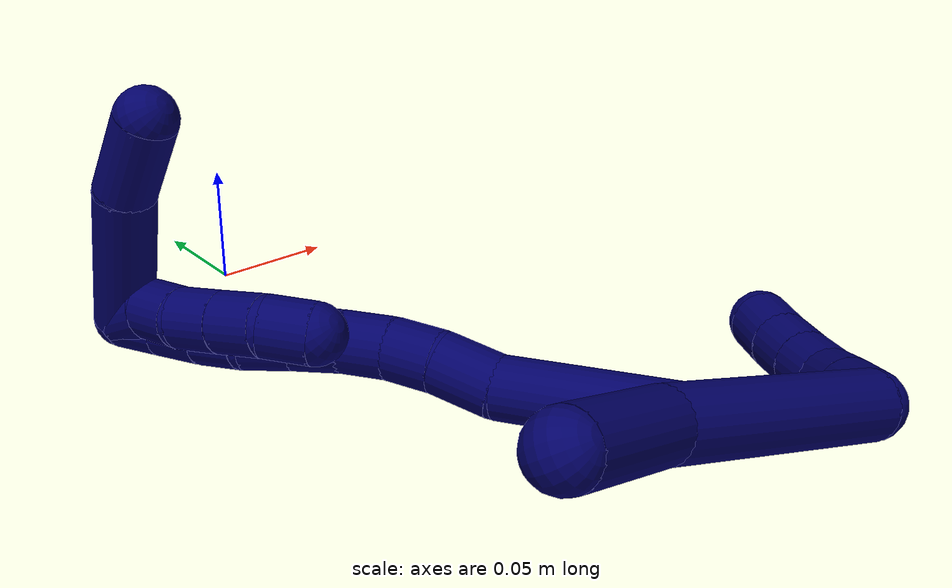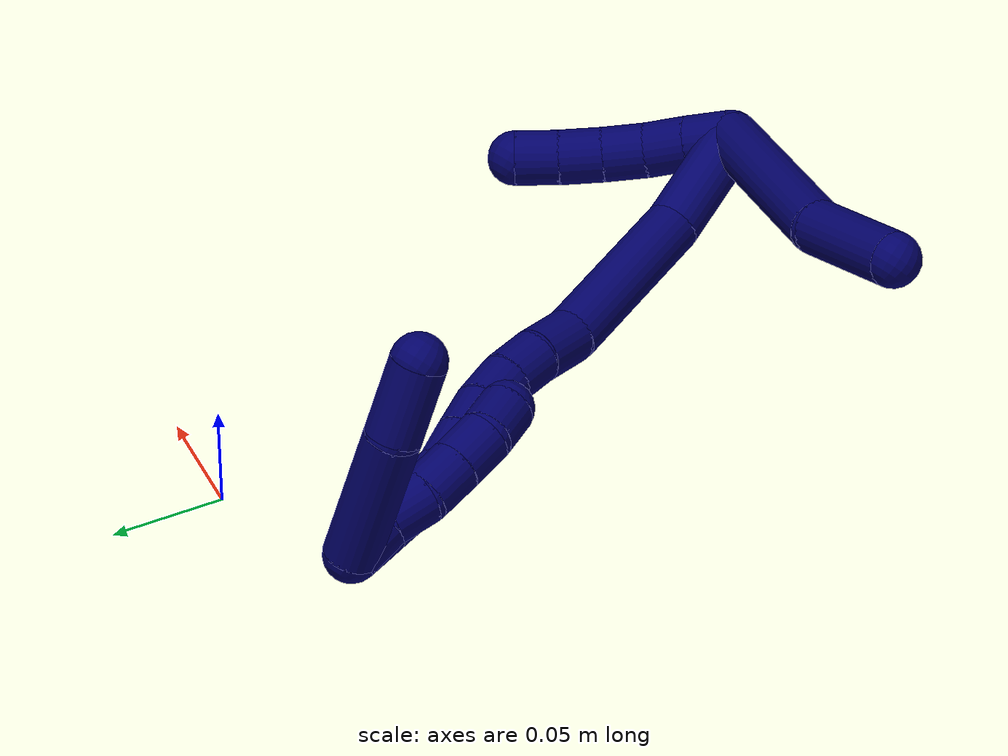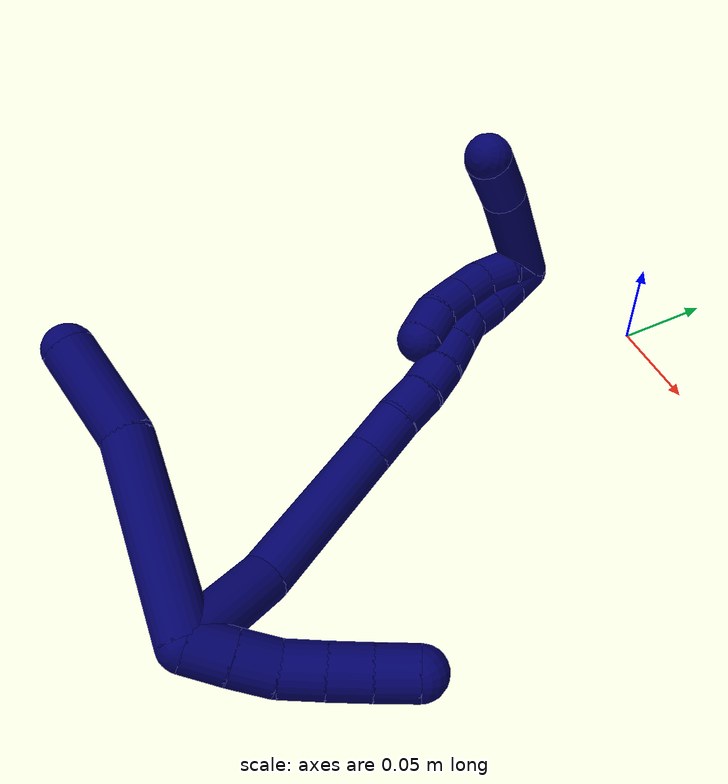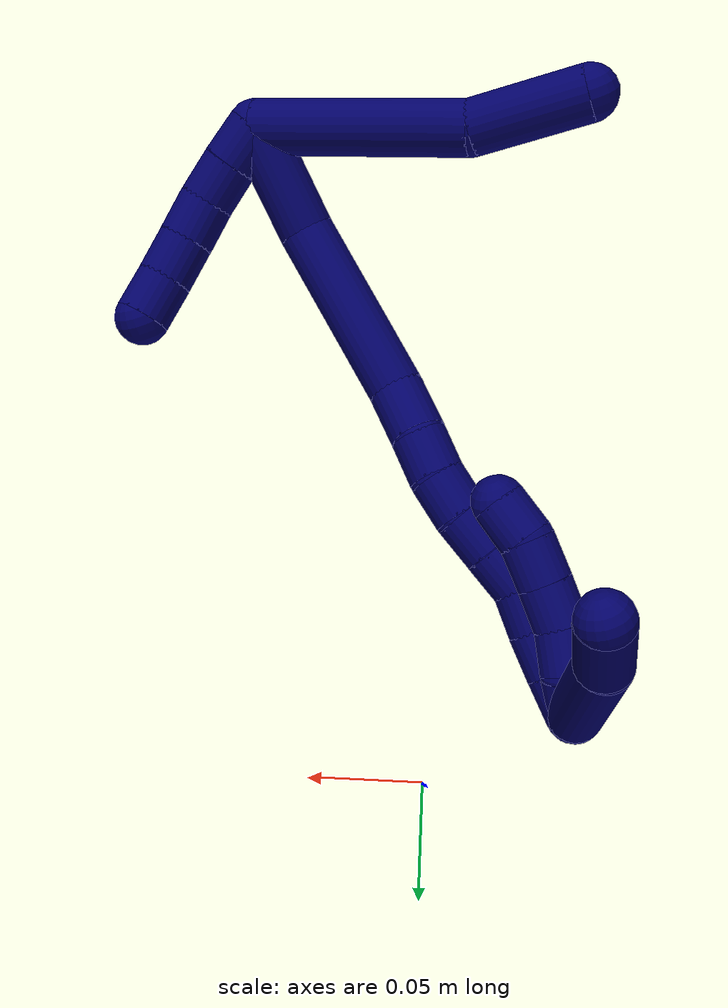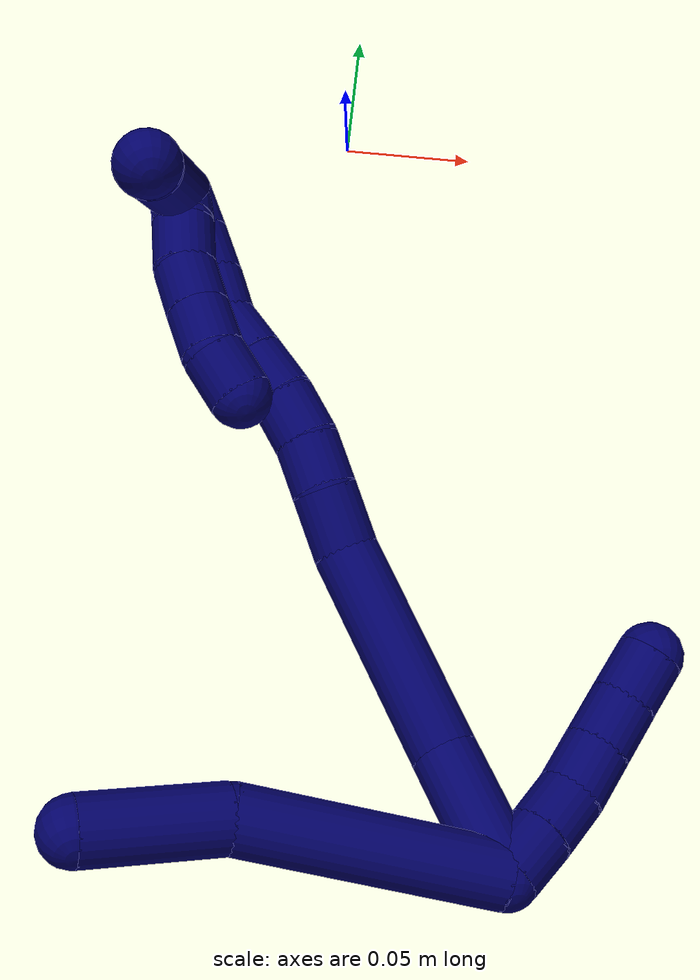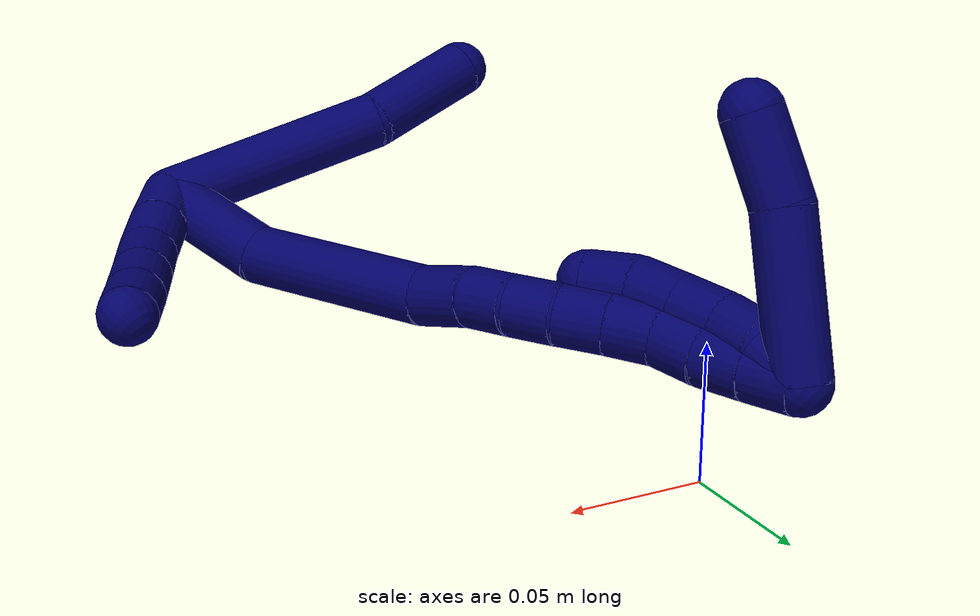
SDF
<sdf version="1.7">
 <world name="default">
  <model name="7">
   <static>0</static>
   <link name="7">
    <collision name="collision-cylinder-e_1_2_8">
     <pose>-0.047247 -0.005652 -0.011453 2.68315 -1.30678 -2.54994</pose>
     <geometry><cylinder><radius>0.0125</radius><length>0.097887</length></cylinder></geometry>
     <surface>
      <friction><ode><mu>1.16</mu><mu2>1.16</mu2><slip1>0</slip1><slip2>0</slip2></ode></friction>
      <contact><ode><kp>1e+06</kp><kd>1</kd><max_vel>0</max_vel><min_depth>0.001</min_depth></ode></contact>
     </surface>
    </collision>
    <visual name="visual-cylinder-e_1_2_8">
     <pose>-0.047247 -0.005652 -0.011453 2.68315 -1.30678 -2.54994</pose>
     <geometry><cylinder><radius>0.0125</radius><length>0.097887</length></cylinder></geometry>
     <material><ambient>0.003922 0 0.403922 1</ambient></material>
    </visual>
    <collision name="collision-cylinder-e_2_8_6">
     <pose>-0.119736 -0.017752 -0.022404 1.49296 -1.32001 -1.24533</pose>
     <geometry><cylinder><radius>0.0125</radius><length>0.052113</length></cylinder></geometry>
     <surface>
      <friction><ode><mu>1.16</mu><mu2>1.16</mu2><slip1>0</slip1><slip2>0</slip2></ode></friction>
      <contact><ode><kp>1e+06</kp><kd>1</kd><max_vel>0</max_vel><min_depth>0.001</min_depth></ode></contact>
     </surface>
    </collision>
    <visual name="visual-cylinder-e_2_8_6">
     <pose>-0.119736 -0.017752 -0.022404 1.49296 -1.32001 -1.24533</pose>
     <geometry><cylinder><radius>0.0125</radius><length>0.052113</length></cylinder></geometry>
     <material><ambient>0.003922 0 0.403922 1</ambient></material>
    </visual>
    <collision name="collision-cylinder-e_1_2_9">
     <pose>0.006571 0.004936 -0.005698 -2.42767 0.716904 -1.57533</pose>
     <geometry><cylinder><radius>0.0125</radius><length>0.02</length></cylinder></geometry>
     <surface>
      <friction><ode><mu>1.16</mu><mu2>1.16</mu2><slip1>0</slip1><slip2>0</slip2></ode></friction>
      <contact><ode><kp>1e+06</kp><kd>1</kd><max_vel>0</max_vel><min_depth>0.001</min_depth></ode></contact>
     </surface>
    </collision>
    <visual name="visual-cylinder-e_1_2_9">
     <pose>0.006571 0.004936 -0.005698 -2.42767 0.716904 -1.57533</pose>
     <geometry><cylinder><radius>0.0125</radius><length>0.02</length></cylinder></geometry>
     <material><ambient>0.003922 0 0.403922 1</ambient></material>
    </visual>
    <collision name="collision-cylinder-e_2_9_10">
     <pose>0.019417 0.014785 -0.017435 -2.45874 0.678439 -1.56378</pose>
     <geometry><cylinder><radius>0.0125</radius><length>0.02</length></cylinder></geometry>
     <surface>
      <friction><ode><mu>1.16</mu><mu2>1.16</mu2><slip1>0</slip1><slip2>0</slip2></ode></friction>
      <contact><ode><kp>1e+06</kp><kd>1</kd><max_vel>0</max_vel><min_depth>0.001</min_depth></ode></contact>
     </surface>
    </collision>
    <visual name="visual-cylinder-e_2_9_10">
     <pose>0.019417 0.014785 -0.017435 -2.45874 0.678439 -1.56378</pose>
     <geometry><cylinder><radius>0.0125</radius><length>0.02</length></cylinder></geometry>
     <material><ambient>0.003922 0 0.403922 1</ambient></material>
    </visual>
    <collision name="collision-cylinder-e_3_10_11">
     <pose>0.030377 0.026145 -0.029515 -2.32364 0.487514 -1.0419</pose>
     <geometry><cylinder><radius>0.0125</radius><length>0.02</length></cylinder></geometry>
     <surface>
      <friction><ode><mu>1.16</mu><mu2>1.16</mu2><slip1>0</slip1><slip2>0</slip2></ode></friction>
      <contact><ode><kp>1e+06</kp><kd>1</kd><max_vel>0</max_vel><min_depth>0.001</min_depth></ode></contact>
     </surface>
    </collision>
    <visual name="visual-cylinder-e_3_10_11">
     <pose>0.030377 0.026145 -0.029515 -2.32364 0.487514 -1.0419</pose>
     <geometry><cylinder><radius>0.0125</radius><length>0.02</length></cylinder></geometry>
     <material><ambient>0.003922 0 0.403922 1</ambient></material>
    </visual>
    <collision name="collision-cylinder-e_4_11_12">
     <pose>0.039549 0.039389 -0.041359 -2.27752 0.465338 -0.949433</pose>
     <geometry><cylinder><radius>0.0125</radius><length>0.02</length></cylinder></geometry>
     <surface>
      <friction><ode><mu>1.16</mu><mu2>1.16</mu2><slip1>0</slip1><slip2>0</slip2></ode></friction>
      <contact><ode><kp>1e+06</kp><kd>1</kd><max_vel>0</max_vel><min_depth>0.001</min_depth></ode></contact>
     </surface>
    </collision>
    <visual name="visual-cylinder-e_4_11_12">
     <pose>0.039549 0.039389 -0.041359 -2.27752 0.465338 -0.949433</pose>
     <geometry><cylinder><radius>0.0125</radius><length>0.02</length></cylinder></geometry>
     <material><ambient>0.003922 0 0.403922 1</ambient></material>
    </visual>
    <collision name="collision-cylinder-e_5_12_5">
     <pose>0.04831 0.053416 -0.052589 -2.21464 0.44169 -0.844384</pose>
     <geometry><cylinder><radius>0.0125</radius><length>0.02</length></cylinder></geometry>
     <surface>
      <friction><ode><mu>1.16</mu><mu2>1.16</mu2><slip1>0</slip1><slip2>0</slip2></ode></friction>
      <contact><ode><kp>1e+06</kp><kd>1</kd><max_vel>0</max_vel><min_depth>0.001</min_depth></ode></contact>
     </surface>
    </collision>
    <visual name="visual-cylinder-e_5_12_5">
     <pose>0.04831 0.053416 -0.052589 -2.21464 0.44169 -0.844384</pose>
     <geometry><cylinder><radius>0.0125</radius><length>0.02</length></cylinder></geometry>
     <material><ambient>0.003922 0 0.403922 1</ambient></material>
    </visual>
    <collision name="collision-cylinder-e_1_2_13">
     <pose>-0.005847 0.003666 -0.024631 -2.99383 -0.230619 2.00433</pose>
     <geometry><cylinder><radius>0.0125</radius><length>0.05116</length></cylinder></geometry>
     <surface>
      <friction><ode><mu>1.16</mu><mu2>1.16</mu2><slip1>0</slip1><slip2>0</slip2></ode></friction>
      <contact><ode><kp>1e+06</kp><kd>1</kd><max_vel>0</max_vel><min_depth>0.001</min_depth></ode></contact>
     </surface>
    </collision>
    <visual name="visual-cylinder-e_1_2_13">
     <pose>-0.005847 0.003666 -0.024631 -2.99383 -0.230619 2.00433</pose>
     <geometry><cylinder><radius>0.0125</radius><length>0.05116</length></cylinder></geometry>
     <material><ambient>0.003922 0 0.403922 1</ambient></material>
    </visual>
    <collision name="collision-cylinder-e_2_13_14">
     <pose>-0.029407 0.022699 -0.083893 -2.72396 -0.437317 1.61827</pose>
     <geometry><cylinder><radius>0.0125</radius><length>0.083646</length></cylinder></geometry>
     <surface>
      <friction><ode><mu>1.16</mu><mu2>1.16</mu2><slip1>0</slip1><slip2>0</slip2></ode></friction>
      <contact><ode><kp>1e+06</kp><kd>1</kd><max_vel>0</max_vel><min_depth>0.001</min_depth></ode></contact>
     </surface>
    </collision>
    <visual name="visual-cylinder-e_2_13_14">
     <pose>-0.029407 0.022699 -0.083893 -2.72396 -0.437317 1.61827</pose>
     <geometry><cylinder><radius>0.0125</radius><length>0.083646</length></cylinder></geometry>
     <material><ambient>0.003922 0 0.403922 1</ambient></material>
    </visual>
    <collision name="collision-cylinder-e_3_14_15">
     <pose>-0.05268 0.045084 -0.12701 -2.45059 -0.467603 1.16906</pose>
     <geometry><cylinder><radius>0.0125</radius><length>0.024672</length></cylinder></geometry>
     <surface>
      <friction><ode><mu>1.16</mu><mu2>1.16</mu2><slip1>0</slip1><slip2>0</slip2></ode></friction>
      <contact><ode><kp>1e+06</kp><kd>1</kd><max_vel>0</max_vel><min_depth>0.001</min_depth></ode></contact>
     </surface>
    </collision>
    <visual name="visual-cylinder-e_3_14_15">
     <pose>-0.05268 0.045084 -0.12701 -2.45059 -0.467603 1.16906</pose>
     <geometry><cylinder><radius>0.0125</radius><length>0.024672</length></cylinder></geometry>
     <material><ambient>0.003922 0 0.403922 1</ambient></material>
    </visual>
    <collision name="collision-cylinder-e_4_15_16">
     <pose>-0.062081 0.056977 -0.143494 -2.59425 -0.389147 1.22416</pose>
     <geometry><cylinder><radius>0.0125</radius><length>0.020248</length></cylinder></geometry>
     <surface>
      <friction><ode><mu>1.16</mu><mu2>1.16</mu2><slip1>0</slip1><slip2>0</slip2></ode></friction>
      <contact><ode><kp>1e+06</kp><kd>1</kd><max_vel>0</max_vel><min_depth>0.001</min_depth></ode></contact>
     </surface>
    </collision>
    <visual name="visual-cylinder-e_4_15_16">
     <pose>-0.062081 0.056977 -0.143494 -2.59425 -0.389147 1.22416</pose>
     <geometry><cylinder><radius>0.0125</radius><length>0.020248</length></cylinder></geometry>
     <material><ambient>0.003922 0 0.403922 1</ambient></material>
    </visual>
    <collision name="collision-cylinder-e_5_16_17">
     <pose>-0.070703 0.065379 -0.159688 -2.73508 -0.491978 1.76691</pose>
     <geometry><cylinder><radius>0.0125</radius><length>0.020245</length></cylinder></geometry>
     <surface>
      <friction><ode><mu>1.16</mu><mu2>1.16</mu2><slip1>0</slip1><slip2>0</slip2></ode></friction>
      <contact><ode><kp>1e+06</kp><kd>1</kd><max_vel>0</max_vel><min_depth>0.001</min_depth></ode></contact>
     </surface>
    </collision>
    <visual name="visual-cylinder-e_5_16_17">
     <pose>-0.070703 0.065379 -0.159688 -2.73508 -0.491978 1.76691</pose>
     <geometry><cylinder><radius>0.0125</radius><length>0.020245</length></cylinder></geometry>
     <material><ambient>0.003922 0 0.403922 1</ambient></material>
    </visual>
    <collision name="collision-cylinder-e_6_17_18">
     <pose>-0.08089 0.071313 -0.175957 -2.85204 -0.570439 2.21874</pose>
     <geometry><cylinder><radius>0.0125</radius><length>0.02002</length></cylinder></geometry>
     <surface>
      <friction><ode><mu>1.16</mu><mu2>1.16</mu2><slip1>0</slip1><slip2>0</slip2></ode></friction>
      <contact><ode><kp>1e+06</kp><kd>1</kd><max_vel>0</max_vel><min_depth>0.001</min_depth></ode></contact>
     </surface>
    </collision>
    <visual name="visual-cylinder-e_6_17_18">
     <pose>-0.08089 0.071313 -0.175957 -2.85204 -0.570439 2.21874</pose>
     <geometry><cylinder><radius>0.0125</radius><length>0.02002</length></cylinder></geometry>
     <material><ambient>0.003922 0 0.403922 1</ambient></material>
    </visual>
    <collision name="collision-cylinder-e_7_18_19">
     <pose>-0.091571 0.075815 -0.192265 -2.89226 -0.55562 2.31353</pose>
     <geometry><cylinder><radius>0.0125</radius><length>0.020003</length></cylinder></geometry>
     <surface>
      <friction><ode><mu>1.16</mu><mu2>1.16</mu2><slip1>0</slip1><slip2>0</slip2></ode></friction>
      <contact><ode><kp>1e+06</kp><kd>1</kd><max_vel>0</max_vel><min_depth>0.001</min_depth></ode></contact>
     </surface>
    </collision>
    <visual name="visual-cylinder-e_7_18_19">
     <pose>-0.091571 0.075815 -0.192265 -2.89226 -0.55562 2.31353</pose>
     <geometry><cylinder><radius>0.0125</radius><length>0.020003</length></cylinder></geometry>
     <material><ambient>0.003922 0 0.403922 1</ambient></material>
    </visual>
    <collision name="collision-cylinder-e_8_19_20">
     <pose>-0.099304 0.081634 -0.209453 -2.74759 -0.248226 1.11728</pose>
     <geometry><cylinder><radius>0.0125</radius><length>0.020005</length></cylinder></geometry>
     <surface>
      <friction><ode><mu>1.16</mu><mu2>1.16</mu2><slip1>0</slip1><slip2>0</slip2></ode></friction>
      <contact><ode><kp>1e+06</kp><kd>1</kd><max_vel>0</max_vel><min_depth>0.001</min_depth></ode></contact>
     </surface>
    </collision>
    <visual name="visual-cylinder-e_8_19_20">
     <pose>-0.099304 0.081634 -0.209453 -2.74759 -0.248226 1.11728</pose>
     <geometry><cylinder><radius>0.0125</radius><length>0.020005</length></cylinder></geometry>
     <material><ambient>0.003922 0 0.403922 1</ambient></material>
    </visual>
    <collision name="collision-cylinder-e_9_20_21">
     <pose>-0.105106 0.089635 -0.226803 -2.67032 -0.340926 1.24399</pose>
     <geometry><cylinder><radius>0.0125</radius><length>0.020001</length></cylinder></geometry>
     <surface>
      <friction><ode><mu>1.16</mu><mu2>1.16</mu2><slip1>0</slip1><slip2>0</slip2></ode></friction>
      <contact><ode><kp>1e+06</kp><kd>1</kd><max_vel>0</max_vel><min_depth>0.001</min_depth></ode></contact>
     </surface>
    </collision>
    <visual name="visual-cylinder-e_9_20_21">
     <pose>-0.105106 0.089635 -0.226803 -2.67032 -0.340926 1.24399</pose>
     <geometry><cylinder><radius>0.0125</radius><length>0.020001</length></cylinder></geometry>
     <material><ambient>0.003922 0 0.403922 1</ambient></material>
    </visual>
    <collision name="collision-cylinder-e_10_21_1">
     <pose>-0.11202 0.098193 -0.243504 -2.6658 -0.365162 1.30155</pose>
     <geometry><cylinder><radius>0.0125</radius><length>0.020001</length></cylinder></geometry>
     <surface>
      <friction><ode><mu>1.16</mu><mu2>1.16</mu2><slip1>0</slip1><slip2>0</slip2></ode></friction>
      <contact><ode><kp>1e+06</kp><kd>1</kd><max_vel>0</max_vel><min_depth>0.001</min_depth></ode></contact>
     </surface>
    </collision>
    <visual name="visual-cylinder-e_10_21_1">
     <pose>-0.11202 0.098193 -0.243504 -2.6658 -0.365162 1.30155</pose>
     <geometry><cylinder><radius>0.0125</radius><length>0.020001</length></cylinder></geometry>
     <material><ambient>0.003922 0 0.403922 1</ambient></material>
    </visual>
    <collision name="collision-cylinder-e_1_1_22">
     <pose>-0.116035 0.10046 -0.242022 0.202703 -0.044396 -0.004516</pose>
     <geometry><cylinder><radius>0.0125</radius><length>0.02</length></cylinder></geometry>
     <surface>
      <friction><ode><mu>1.16</mu><mu2>1.16</mu2><slip1>0</slip1><slip2>0</slip2></ode></friction>
      <contact><ode><kp>1e+06</kp><kd>1</kd><max_vel>0</max_vel><min_depth>0.001</min_depth></ode></contact>
     </surface>
    </collision>
    <visual name="visual-cylinder-e_1_1_22">
     <pose>-0.116035 0.10046 -0.242022 0.202703 -0.044396 -0.004516</pose>
     <geometry><cylinder><radius>0.0125</radius><length>0.02</length></cylinder></geometry>
     <material><ambient>0.003922 0 0.403922 1</ambient></material>
    </visual>
    <collision name="collision-cylinder-e_2_22_23">
     <pose>-0.115753 0.093509 -0.223572 0.518169 0.072658 0.019265</pose>
     <geometry><cylinder><radius>0.0125</radius><length>0.02</length></cylinder></geometry>
     <surface>
      <friction><ode><mu>1.16</mu><mu2>1.16</mu2><slip1>0</slip1><slip2>0</slip2></ode></friction>
      <contact><ode><kp>1e+06</kp><kd>1</kd><max_vel>0</max_vel><min_depth>0.001</min_depth></ode></contact>
     </surface>
    </collision>
    <visual name="visual-cylinder-e_2_22_23">
     <pose>-0.115753 0.093509 -0.223572 0.518169 0.072658 0.019265</pose>
     <geometry><cylinder><radius>0.0125</radius><length>0.02</length></cylinder></geometry>
     <material><ambient>0.003922 0 0.403922 1</ambient></material>
    </visual>
    <collision name="collision-cylinder-e_3_23_24">
     <pose>-0.112459 0.084912 -0.205962 0.388129 0.259761 0.051331</pose>
     <geometry><cylinder><radius>0.0125</radius><length>0.02</length></cylinder></geometry>
     <surface>
      <friction><ode><mu>1.16</mu><mu2>1.16</mu2><slip1>0</slip1><slip2>0</slip2></ode></friction>
      <contact><ode><kp>1e+06</kp><kd>1</kd><max_vel>0</max_vel><min_depth>0.001</min_depth></ode></contact>
     </surface>
    </collision>
    <visual name="visual-cylinder-e_3_23_24">
     <pose>-0.112459 0.084912 -0.205962 0.388129 0.259761 0.051331</pose>
     <geometry><cylinder><radius>0.0125</radius><length>0.02</length></cylinder></geometry>
     <material><ambient>0.003922 0 0.403922 1</ambient></material>
    </visual>
    <collision name="collision-cylinder-e_4_24_25">
     <pose>-0.107108 0.077738 -0.188078 0.37481 0.281972 0.053814</pose>
     <geometry><cylinder><radius>0.0125</radius><length>0.02</length></cylinder></geometry>
     <surface>
      <friction><ode><mu>1.16</mu><mu2>1.16</mu2><slip1>0</slip1><slip2>0</slip2></ode></friction>
      <contact><ode><kp>1e+06</kp><kd>1</kd><max_vel>0</max_vel><min_depth>0.001</min_depth></ode></contact>
     </surface>
    </collision>
    <visual name="visual-cylinder-e_4_24_25">
     <pose>-0.107108 0.077738 -0.188078 0.37481 0.281972 0.053814</pose>
     <geometry><cylinder><radius>0.0125</radius><length>0.02</length></cylinder></geometry>
     <material><ambient>0.003922 0 0.403922 1</ambient></material>
    </visual>
    <collision name="collision-cylinder-e_5_25_4">
     <pose>-0.098874 0.070855 -0.171462 0.413165 0.576568 0.124136</pose>
     <geometry><cylinder><radius>0.0125</radius><length>0.02</length></cylinder></geometry>
     <surface>
      <friction><ode><mu>1.16</mu><mu2>1.16</mu2><slip1>0</slip1><slip2>0</slip2></ode></friction>
      <contact><ode><kp>1e+06</kp><kd>1</kd><max_vel>0</max_vel><min_depth>0.001</min_depth></ode></contact>
     </surface>
    </collision>
    <visual name="visual-cylinder-e_5_25_4">
     <pose>-0.098874 0.070855 -0.171462 0.413165 0.576568 0.124136</pose>
     <geometry><cylinder><radius>0.0125</radius><length>0.02</length></cylinder></geometry>
     <material><ambient>0.003922 0 0.403922 1</ambient></material>
    </visual>
    <collision name="collision-cylinder-e_1_1_26">
     <pose>-0.131468 0.116378 -0.227325 -0.516567 -0.513428 0.138478</pose>
     <geometry><cylinder><radius>0.0125</radius><length>0.064648</length></cylinder></geometry>
     <surface>
      <friction><ode><mu>1.16</mu><mu2>1.16</mu2><slip1>0</slip1><slip2>0</slip2></ode></friction>
      <contact><ode><kp>1e+06</kp><kd>1</kd><max_vel>0</max_vel><min_depth>0.001</min_depth></ode></contact>
     </surface>
    </collision>
    <visual name="visual-cylinder-e_1_1_26">
     <pose>-0.131468 0.116378 -0.227325 -0.516567 -0.513428 0.138478</pose>
     <geometry><cylinder><radius>0.0125</radius><length>0.064648</length></cylinder></geometry>
     <material><ambient>0.003922 0 0.403922 1</ambient></material>
    </visual>
    <collision name="collision-cylinder-e_2_26_3">
     <pose>-0.152855 0.136983 -0.187442 -0.410315 -0.317041 0.066505</pose>
     <geometry><cylinder><radius>0.0125</radius><length>0.035352</length></cylinder></geometry>
     <surface>
      <friction><ode><mu>1.16</mu><mu2>1.16</mu2><slip1>0</slip1><slip2>0</slip2></ode></friction>
      <contact><ode><kp>1e+06</kp><kd>1</kd><max_vel>0</max_vel><min_depth>0.001</min_depth></ode></contact>
     </surface>
    </collision>
    <visual name="visual-cylinder-e_2_26_3">
     <pose>-0.152855 0.136983 -0.187442 -0.410315 -0.317041 0.066505</pose>
     <geometry><cylinder><radius>0.0125</radius><length>0.035352</length></cylinder></geometry>
     <material><ambient>0.003922 0 0.403922 1</ambient></material>
    </visual>
    <collision name="collision-sphere-3">
     <pose>-0.158366 0.143683 -0.172041 0 -0 0</pose>
     <geometry><sphere><radius>0.0125</radius></sphere></geometry>
     <surface>
      <friction><ode><mu>1.16</mu><mu2>1.16</mu2><slip1>0</slip1><slip2>0</slip2></ode></friction>
      <contact><ode><kp>1e+06</kp><kd>1</kd><max_vel>0</max_vel><min_depth>0.001</min_depth></ode></contact>
     </surface>
    </collision>
    <visual name="visual-sphere-3">
     <pose>-0.158366 0.143683 -0.172041 0 -0 0</pose>
     <geometry><sphere><radius>0.0125</radius></sphere></geometry>
     <material><ambient>0.003922 0 0.403922 1</ambient></material>
    </visual>
    <collision name="collision-sphere-26">
     <pose>-0.147344 0.130284 -0.202843 0 -0 0</pose>
     <geometry><sphere><radius>0.0125</radius></sphere></geometry>
     <surface>
      <friction><ode><mu>1.16</mu><mu2>1.16</mu2><slip1>0</slip1><slip2>0</slip2></ode></friction>
      <contact><ode><kp>1e+06</kp><kd>1</kd><max_vel>0</max_vel><min_depth>0.001</min_depth></ode></contact>
     </surface>
    </collision>
    <visual name="visual-sphere-26">
     <pose>-0.147344 0.130284 -0.202843 0 -0 0</pose>
     <geometry><sphere><radius>0.0125</radius></sphere></geometry>
     <material><ambient>0.003922 0 0.403922 1</ambient></material>
    </visual>
    <collision name="collision-sphere-4">
     <pose>-0.093422 0.067489 -0.163784 0 -0 0</pose>
     <geometry><sphere><radius>0.0125</radius></sphere></geometry>
     <surface>
      <friction><ode><mu>1.16</mu><mu2>1.16</mu2><slip1>0</slip1><slip2>0</slip2></ode></friction>
      <contact><ode><kp>1e+06</kp><kd>1</kd><max_vel>0</max_vel><min_depth>0.001</min_depth></ode></contact>
     </surface>
    </collision>
    <visual name="visual-sphere-4">
     <pose>-0.093422 0.067489 -0.163784 0 -0 0</pose>
     <geometry><sphere><radius>0.0125</radius></sphere></geometry>
     <material><ambient>0.003922 0 0.403922 1</ambient></material>
    </visual>
    <collision name="collision-sphere-25">
     <pose>-0.104325 0.074221 -0.17914 0 -0 0</pose>
     <geometry><sphere><radius>0.0125</radius></sphere></geometry>
     <surface>
      <friction><ode><mu>1.16</mu><mu2>1.16</mu2><slip1>0</slip1><slip2>0</slip2></ode></friction>
      <contact><ode><kp>1e+06</kp><kd>1</kd><max_vel>0</max_vel><min_depth>0.001</min_depth></ode></contact>
     </surface>
    </collision>
    <visual name="visual-sphere-25">
     <pose>-0.104325 0.074221 -0.17914 0 -0 0</pose>
     <geometry><sphere><radius>0.0125</radius></sphere></geometry>
     <material><ambient>0.003922 0 0.403922 1</ambient></material>
    </visual>
    <collision name="collision-sphere-24">
     <pose>-0.10989 0.081254 -0.197016 0 -0 0</pose>
     <geometry><sphere><radius>0.0125</radius></sphere></geometry>
     <surface>
      <friction><ode><mu>1.16</mu><mu2>1.16</mu2><slip1>0</slip1><slip2>0</slip2></ode></friction>
      <contact><ode><kp>1e+06</kp><kd>1</kd><max_vel>0</max_vel><min_depth>0.001</min_depth></ode></contact>
     </surface>
    </collision>
    <visual name="visual-sphere-24">
     <pose>-0.10989 0.081254 -0.197016 0 -0 0</pose>
     <geometry><sphere><radius>0.0125</radius></sphere></geometry>
     <material><ambient>0.003922 0 0.403922 1</ambient></material>
    </visual>
    <collision name="collision-sphere-23">
     <pose>-0.115027 0.088569 -0.214908 0 -0 0</pose>
     <geometry><sphere><radius>0.0125</radius></sphere></geometry>
     <surface>
      <friction><ode><mu>1.16</mu><mu2>1.16</mu2><slip1>0</slip1><slip2>0</slip2></ode></friction>
      <contact><ode><kp>1e+06</kp><kd>1</kd><max_vel>0</max_vel><min_depth>0.001</min_depth></ode></contact>
     </surface>
    </collision>
    <visual name="visual-sphere-23">
     <pose>-0.115027 0.088569 -0.214908 0 -0 0</pose>
     <geometry><sphere><radius>0.0125</radius></sphere></geometry>
     <material><ambient>0.003922 0 0.403922 1</ambient></material>
    </visual>
    <collision name="collision-sphere-22">
     <pose>-0.116479 0.098449 -0.232236 0 -0 0</pose>
     <geometry><sphere><radius>0.0125</radius></sphere></geometry>
     <surface>
      <friction><ode><mu>1.16</mu><mu2>1.16</mu2><slip1>0</slip1><slip2>0</slip2></ode></friction>
      <contact><ode><kp>1e+06</kp><kd>1</kd><max_vel>0</max_vel><min_depth>0.001</min_depth></ode></contact>
     </surface>
    </collision>
    <visual name="visual-sphere-22">
     <pose>-0.116479 0.098449 -0.232236 0 -0 0</pose>
     <geometry><sphere><radius>0.0125</radius></sphere></geometry>
     <material><ambient>0.003922 0 0.403922 1</ambient></material>
    </visual>
    <collision name="collision-sphere-1">
     <pose>-0.115592 0.102471 -0.251808 0 -0 0</pose>
     <geometry><sphere><radius>0.0125</radius></sphere></geometry>
     <surface>
      <friction><ode><mu>1.16</mu><mu2>1.16</mu2><slip1>0</slip1><slip2>0</slip2></ode></friction>
      <contact><ode><kp>1e+06</kp><kd>1</kd><max_vel>0</max_vel><min_depth>0.001</min_depth></ode></contact>
     </surface>
    </collision>
    <visual name="visual-sphere-1">
     <pose>-0.115592 0.102471 -0.251808 0 -0 0</pose>
     <geometry><sphere><radius>0.0125</radius></sphere></geometry>
     <material><ambient>0.003922 0 0.403922 1</ambient></material>
    </visual>
    <collision name="collision-sphere-21">
     <pose>-0.108449 0.093914 -0.235201 0 -0 0</pose>
     <geometry><sphere><radius>0.0125</radius></sphere></geometry>
     <surface>
      <friction><ode><mu>1.16</mu><mu2>1.16</mu2><slip1>0</slip1><slip2>0</slip2></ode></friction>
      <contact><ode><kp>1e+06</kp><kd>1</kd><max_vel>0</max_vel><min_depth>0.001</min_depth></ode></contact>
     </surface>
    </collision>
    <visual name="visual-sphere-21">
     <pose>-0.108449 0.093914 -0.235201 0 -0 0</pose>
     <geometry><sphere><radius>0.0125</radius></sphere></geometry>
     <material><ambient>0.003922 0 0.403922 1</ambient></material>
    </visual>
    <collision name="collision-sphere-11">
     <pose>0.035061 0.032593 -0.035556 0 -0 0</pose>
     <geometry><sphere><radius>0.0125</radius></sphere></geometry>
     <surface>
      <friction><ode><mu>1.16</mu><mu2>1.16</mu2><slip1>0</slip1><slip2>0</slip2></ode></friction>
      <contact><ode><kp>1e+06</kp><kd>1</kd><max_vel>0</max_vel><min_depth>0.001</min_depth></ode></contact>
     </surface>
    </collision>
    <visual name="visual-sphere-11">
     <pose>0.035061 0.032593 -0.035556 0 -0 0</pose>
     <geometry><sphere><radius>0.0125</radius></sphere></geometry>
     <material><ambient>0.003922 0 0.403922 1</ambient></material>
    </visual>
    <collision name="collision-sphere-10">
     <pose>0.025693 0.019698 -0.023475 0 -0 0</pose>
     <geometry><sphere><radius>0.0125</radius></sphere></geometry>
     <surface>
      <friction><ode><mu>1.16</mu><mu2>1.16</mu2><slip1>0</slip1><slip2>0</slip2></ode></friction>
      <contact><ode><kp>1e+06</kp><kd>1</kd><max_vel>0</max_vel><min_depth>0.001</min_depth></ode></contact>
     </surface>
    </collision>
    <visual name="visual-sphere-10">
     <pose>0.025693 0.019698 -0.023475 0 -0 0</pose>
     <geometry><sphere><radius>0.0125</radius></sphere></geometry>
     <material><ambient>0.003922 0 0.403922 1</ambient></material>
    </visual>
    <collision name="collision-sphere-6">
     <pose>-0.144978 -0.024199 -0.021901 0 -0 0</pose>
     <geometry><sphere><radius>0.0125</radius></sphere></geometry>
     <surface>
      <friction><ode><mu>1.16</mu><mu2>1.16</mu2><slip1>0</slip1><slip2>0</slip2></ode></friction>
      <contact><ode><kp>1e+06</kp><kd>1</kd><max_vel>0</max_vel><min_depth>0.001</min_depth></ode></contact>
     </surface>
    </collision>
    <visual name="visual-sphere-6">
     <pose>-0.144978 -0.024199 -0.021901 0 -0 0</pose>
     <geometry><sphere><radius>0.0125</radius></sphere></geometry>
     <material><ambient>0.003922 0 0.403922 1</ambient></material>
    </visual>
    <collision name="collision-sphere-9">
     <pose>0.013141 0.009872 -0.011395 0 -0 0</pose>
     <geometry><sphere><radius>0.0125</radius></sphere></geometry>
     <surface>
      <friction><ode><mu>1.16</mu><mu2>1.16</mu2><slip1>0</slip1><slip2>0</slip2></ode></friction>
      <contact><ode><kp>1e+06</kp><kd>1</kd><max_vel>0</max_vel><min_depth>0.001</min_depth></ode></contact>
     </surface>
    </collision>
    <visual name="visual-sphere-9">
     <pose>0.013141 0.009872 -0.011395 0 -0 0</pose>
     <geometry><sphere><radius>0.0125</radius></sphere></geometry>
     <material><ambient>0.003922 0 0.403922 1</ambient></material>
    </visual>
    <collision name="collision-sphere-2">
     <geometry><sphere><radius>0.0125</radius></sphere></geometry>
     <surface>
      <friction><ode><mu>1.16</mu><mu2>1.16</mu2><slip1>0</slip1><slip2>0</slip2></ode></friction>
      <contact><ode><kp>1e+06</kp><kd>1</kd><max_vel>0</max_vel><min_depth>0.001</min_depth></ode></contact>
     </surface>
    </collision>
    <visual name="visual-sphere-2">
     <geometry><sphere><radius>0.0125</radius></sphere></geometry>
     <material><ambient>0.003922 0 0.403922 1</ambient></material>
    </visual>
    <collision name="collision-sphere-19">
     <pose>-0.096847 0.077912 -0.2005 0 -0 0</pose>
     <geometry><sphere><radius>0.0125</radius></sphere></geometry>
     <surface>
      <friction><ode><mu>1.16</mu><mu2>1.16</mu2><slip1>0</slip1><slip2>0</slip2></ode></friction>
      <contact><ode><kp>1e+06</kp><kd>1</kd><max_vel>0</max_vel><min_depth>0.001</min_depth></ode></contact>
     </surface>
    </collision>
    <visual name="visual-sphere-19">
     <pose>-0.096847 0.077912 -0.2005 0 -0 0</pose>
     <geometry><sphere><radius>0.0125</radius></sphere></geometry>
     <material><ambient>0.003922 0 0.403922 1</ambient></material>
    </visual>
    <collision name="collision-sphere-8">
     <pose>-0.094495 -0.011305 -0.022907 0 -0 0</pose>
     <geometry><sphere><radius>0.0125</radius></sphere></geometry>
     <surface>
      <friction><ode><mu>1.16</mu><mu2>1.16</mu2><slip1>0</slip1><slip2>0</slip2></ode></friction>
      <contact><ode><kp>1e+06</kp><kd>1</kd><max_vel>0</max_vel><min_depth>0.001</min_depth></ode></contact>
     </surface>
    </collision>
    <visual name="visual-sphere-8">
     <pose>-0.094495 -0.011305 -0.022907 0 -0 0</pose>
     <geometry><sphere><radius>0.0125</radius></sphere></geometry>
     <material><ambient>0.003922 0 0.403922 1</ambient></material>
    </visual>
    <collision name="collision-sphere-12">
     <pose>0.044036 0.046185 -0.047162 0 -0 0</pose>
     <geometry><sphere><radius>0.0125</radius></sphere></geometry>
     <surface>
      <friction><ode><mu>1.16</mu><mu2>1.16</mu2><slip1>0</slip1><slip2>0</slip2></ode></friction>
      <contact><ode><kp>1e+06</kp><kd>1</kd><max_vel>0</max_vel><min_depth>0.001</min_depth></ode></contact>
     </surface>
    </collision>
    <visual name="visual-sphere-12">
     <pose>0.044036 0.046185 -0.047162 0 -0 0</pose>
     <geometry><sphere><radius>0.0125</radius></sphere></geometry>
     <material><ambient>0.003922 0 0.403922 1</ambient></material>
    </visual>
    <collision name="collision-sphere-5">
     <pose>0.052585 0.060646 -0.058015 0 -0 0</pose>
     <geometry><sphere><radius>0.0125</radius></sphere></geometry>
     <surface>
      <friction><ode><mu>1.16</mu><mu2>1.16</mu2><slip1>0</slip1><slip2>0</slip2></ode></friction>
      <contact><ode><kp>1e+06</kp><kd>1</kd><max_vel>0</max_vel><min_depth>0.001</min_depth></ode></contact>
     </surface>
    </collision>
    <visual name="visual-sphere-5">
     <pose>0.052585 0.060646 -0.058015 0 -0 0</pose>
     <geometry><sphere><radius>0.0125</radius></sphere></geometry>
     <material><ambient>0.003922 0 0.403922 1</ambient></material>
    </visual>
    <collision name="collision-sphere-13">
     <pose>-0.011694 0.007333 -0.049262 0 -0 0</pose>
     <geometry><sphere><radius>0.0125</radius></sphere></geometry>
     <surface>
      <friction><ode><mu>1.16</mu><mu2>1.16</mu2><slip1>0</slip1><slip2>0</slip2></ode></friction>
      <contact><ode><kp>1e+06</kp><kd>1</kd><max_vel>0</max_vel><min_depth>0.001</min_depth></ode></contact>
     </surface>
    </collision>
    <visual name="visual-sphere-13">
     <pose>-0.011694 0.007333 -0.049262 0 -0 0</pose>
     <geometry><sphere><radius>0.0125</radius></sphere></geometry>
     <material><ambient>0.003922 0 0.403922 1</ambient></material>
    </visual>
    <collision name="collision-sphere-14">
     <pose>-0.047119 0.038066 -0.118524 0 -0 0</pose>
     <geometry><sphere><radius>0.0125</radius></sphere></geometry>
     <surface>
      <friction><ode><mu>1.16</mu><mu2>1.16</mu2><slip1>0</slip1><slip2>0</slip2></ode></friction>
      <contact><ode><kp>1e+06</kp><kd>1</kd><max_vel>0</max_vel><min_depth>0.001</min_depth></ode></contact>
     </surface>
    </collision>
    <visual name="visual-sphere-14">
     <pose>-0.047119 0.038066 -0.118524 0 -0 0</pose>
     <geometry><sphere><radius>0.0125</radius></sphere></geometry>
     <material><ambient>0.003922 0 0.403922 1</ambient></material>
    </visual>
    <collision name="collision-sphere-15">
     <pose>-0.05824 0.052102 -0.135495 0 -0 0</pose>
     <geometry><sphere><radius>0.0125</radius></sphere></geometry>
     <surface>
      <friction><ode><mu>1.16</mu><mu2>1.16</mu2><slip1>0</slip1><slip2>0</slip2></ode></friction>
      <contact><ode><kp>1e+06</kp><kd>1</kd><max_vel>0</max_vel><min_depth>0.001</min_depth></ode></contact>
     </surface>
    </collision>
    <visual name="visual-sphere-15">
     <pose>-0.05824 0.052102 -0.135495 0 -0 0</pose>
     <geometry><sphere><radius>0.0125</radius></sphere></geometry>
     <material><ambient>0.003922 0 0.403922 1</ambient></material>
    </visual>
    <collision name="collision-sphere-16">
     <pose>-0.065922 0.061851 -0.151493 0 -0 0</pose>
     <geometry><sphere><radius>0.0125</radius></sphere></geometry>
     <surface>
      <friction><ode><mu>1.16</mu><mu2>1.16</mu2><slip1>0</slip1><slip2>0</slip2></ode></friction>
      <contact><ode><kp>1e+06</kp><kd>1</kd><max_vel>0</max_vel><min_depth>0.001</min_depth></ode></contact>
     </surface>
    </collision>
    <visual name="visual-sphere-16">
     <pose>-0.065922 0.061851 -0.151493 0 -0 0</pose>
     <geometry><sphere><radius>0.0125</radius></sphere></geometry>
     <material><ambient>0.003922 0 0.403922 1</ambient></material>
    </visual>
    <collision name="collision-sphere-17">
     <pose>-0.075485 0.068907 -0.167882 0 -0 0</pose>
     <geometry><sphere><radius>0.0125</radius></sphere></geometry>
     <surface>
      <friction><ode><mu>1.16</mu><mu2>1.16</mu2><slip1>0</slip1><slip2>0</slip2></ode></friction>
      <contact><ode><kp>1e+06</kp><kd>1</kd><max_vel>0</max_vel><min_depth>0.001</min_depth></ode></contact>
     </surface>
    </collision>
    <visual name="visual-sphere-17">
     <pose>-0.075485 0.068907 -0.167882 0 -0 0</pose>
     <geometry><sphere><radius>0.0125</radius></sphere></geometry>
     <material><ambient>0.003922 0 0.403922 1</ambient></material>
    </visual>
    <collision name="collision-sphere-18">
     <pose>-0.086296 0.073718 -0.184031 0 -0 0</pose>
     <geometry><sphere><radius>0.0125</radius></sphere></geometry>
     <surface>
      <friction><ode><mu>1.16</mu><mu2>1.16</mu2><slip1>0</slip1><slip2>0</slip2></ode></friction>
      <contact><ode><kp>1e+06</kp><kd>1</kd><max_vel>0</max_vel><min_depth>0.001</min_depth></ode></contact>
     </surface>
    </collision>
    <visual name="visual-sphere-18">
     <pose>-0.086296 0.073718 -0.184031 0 -0 0</pose>
     <geometry><sphere><radius>0.0125</radius></sphere></geometry>
     <material><ambient>0.003922 0 0.403922 1</ambient></material>
    </visual>
    <collision name="collision-sphere-20">
     <pose>-0.101762 0.085356 -0.218406 0 -0 0</pose>
     <geometry><sphere><radius>0.0125</radius></sphere></geometry>
     <surface>
      <friction><ode><mu>1.16</mu><mu2>1.16</mu2><slip1>0</slip1><slip2>0</slip2></ode></friction>
      <contact><ode><kp>1e+06</kp><kd>1</kd><max_vel>0</max_vel><min_depth>0.001</min_depth></ode></contact>
     </surface>
    </collision>
    <visual name="visual-sphere-20">
     <pose>-0.101762 0.085356 -0.218406 0 -0 0</pose>
     <geometry><sphere><radius>0.0125</radius></sphere></geometry>
     <material><ambient>0.003922 0 0.403922 1</ambient></material>
    </visual>
    <inertial>
     <pose>-0.065887 0.048294 -0.114239 0 -0 0</pose>
     <mass>0.75</mass>
     <inertia><ixx>4.6e-05</ixx><ixy>0</ixy><ixz>0</ixz><iyy>0.00021</iyy><iyz>0</iyz><izz>9.1e-05</izz></inertia>
    </inertial>
   </link>
   <pose>0.085929 -0.285449 0.032004 0.860674 0.499275 0.027216</pose>
  </model>
 </world>
</sdf>
